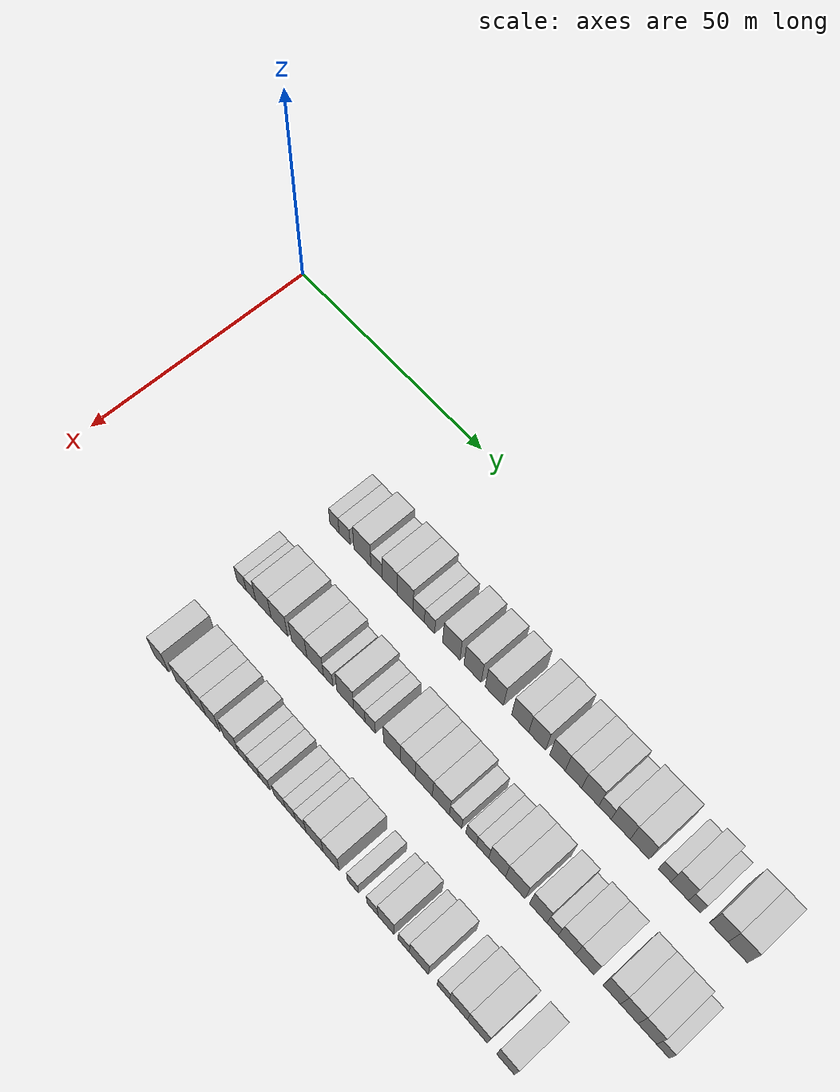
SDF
<sdf version="1.6">
 <world name="default">
  <model name="building_76">
   <static>1</static>
   <pose>25.0000 44.4701 0 0.000000 0.000000 0.000000</pose>
   <link name="link">
    <pose>0 0 3.00 0 0 0</pose>
    <collision name="collision"><geometry><box><size>10.0000 2.4826 6.0000</size></box></geometry></collision>
    <visual name="visual">
     <cast_shadows>0</cast_shadows>
     <geometry><box><size>10.0000 2.4826 6.0000</size></box></geometry>
     <material>
      <script>
       <uri>model://HANNAS_wall/materials/scripts</uri>
       <uri>model://HANNAS_wall/materials/textures</uri>
       <name>vrc/HANNAS_wall</name>
      </script>
     </material>
    </visual>
   </link>
  </model>
  <model name="building_77">
   <static>1</static>
   <pose>25.0000 47.1945 0 0.000000 0.000000 0.000000</pose>
   <link name="link">
    <pose>0 0 3.00 0 0 0</pose>
    <collision name="collision"><geometry><box><size>10.0000 2.9663 6.0000</size></box></geometry></collision>
    <visual name="visual">
     <cast_shadows>0</cast_shadows>
     <geometry><box><size>10.0000 2.9663 6.0000</size></box></geometry>
     <material>
      <script>
       <uri>model://HANNAS_wall/materials/scripts</uri>
       <uri>model://HANNAS_wall/materials/textures</uri>
       <name>vrc/HANNAS_wall</name>
      </script>
     </material>
    </visual>
   </link>
  </model>
  <model name="building_78">
   <static>1</static>
   <pose>25.0000 51.9256 0 0.000000 0.000000 0.000000</pose>
   <link name="link">
    <pose>0 0 4.50 0 0 0</pose>
    <collision name="collision"><geometry><box><size>10.0000 4.4959 9.0000</size></box></geometry></collision>
    <visual name="visual">
     <cast_shadows>0</cast_shadows>
     <geometry><box><size>10.0000 4.4959 9.0000</size></box></geometry>
     <material>
      <script>
       <uri>model://HANNAS_wall/materials/scripts</uri>
       <uri>model://HANNAS_wall/materials/textures</uri>
       <name>vrc/HANNAS_wall</name>
      </script>
     </material>
    </visual>
   </link>
  </model>
  <model name="building_79">
   <static>1</static>
   <pose>25.0000 55.6669 0 0.000000 0.000000 0.000000</pose>
   <link name="link">
    <pose>0 0 3.00 0 0 0</pose>
    <collision name="collision"><geometry><box><size>10.0000 2.9866 6.0000</size></box></geometry></collision>
    <visual name="visual">
     <cast_shadows>0</cast_shadows>
     <geometry><box><size>10.0000 2.9866 6.0000</size></box></geometry>
     <material>
      <script>
       <uri>model://HANNAS_wall/materials/scripts</uri>
       <uri>model://HANNAS_wall/materials/textures</uri>
       <name>vrc/HANNAS_wall</name>
      </script>
     </material>
    </visual>
   </link>
  </model>
  <model name="building_80">
   <static>1</static>
   <pose>25.0000 59.0712 0 0.000000 0.000000 0.000000</pose>
   <link name="link">
    <pose>0 0 4.50 0 0 0</pose>
    <collision name="collision"><geometry><box><size>10.0000 3.8220 9.0000</size></box></geometry></collision>
    <visual name="visual">
     <cast_shadows>0</cast_shadows>
     <geometry><box><size>10.0000 3.8220 9.0000</size></box></geometry>
     <material>
      <script>
       <uri>model://HANNAS_wall/materials/scripts</uri>
       <uri>model://HANNAS_wall/materials/textures</uri>
       <name>vrc/HANNAS_wall</name>
      </script>
     </material>
    </visual>
   </link>
  </model>
  <model name="building_81">
   <static>1</static>
   <pose>25.0000 63.0634 0 0.000000 0.000000 0.000000</pose>
   <link name="link">
    <pose>0 0 4.50 0 0 0</pose>
    <collision name="collision"><geometry><box><size>10.0000 4.1626 9.0000</size></box></geometry></collision>
    <visual name="visual">
     <cast_shadows>0</cast_shadows>
     <geometry><box><size>10.0000 4.1626 9.0000</size></box></geometry>
     <material>
      <script>
       <uri>model://HANNAS_wall/materials/scripts</uri>
       <uri>model://HANNAS_wall/materials/textures</uri>
       <name>vrc/HANNAS_wall</name>
      </script>
     </material>
    </visual>
   </link>
  </model>
  <model name="building_82">
   <static>1</static>
   <pose>25.0000 66.5878 0 0.000000 0.000000 0.000000</pose>
   <link name="link">
    <pose>0 0 3.00 0 0 0</pose>
    <collision name="collision"><geometry><box><size>10.0000 2.8862 6.0000</size></box></geometry></collision>
    <visual name="visual">
     <cast_shadows>0</cast_shadows>
     <geometry><box><size>10.0000 2.8862 6.0000</size></box></geometry>
     <material>
      <script>
       <uri>model://HANNAS_wall/materials/scripts</uri>
       <uri>model://HANNAS_wall/materials/textures</uri>
       <name>vrc/HANNAS_wall</name>
      </script>
     </material>
    </visual>
   </link>
  </model>
  <model name="building_83">
   <static>1</static>
   <pose>25.0000 69.3393 0 0.000000 0.000000 0.000000</pose>
   <link name="link">
    <pose>0 0 3.00 0 0 0</pose>
    <collision name="collision"><geometry><box><size>10.0000 2.6168 6.0000</size></box></geometry></collision>
    <visual name="visual">
     <cast_shadows>0</cast_shadows>
     <geometry><box><size>10.0000 2.6168 6.0000</size></box></geometry>
     <material>
      <script>
       <uri>model://HANNAS_wall/materials/scripts</uri>
       <uri>model://HANNAS_wall/materials/textures</uri>
       <name>vrc/HANNAS_wall</name>
      </script>
     </material>
    </visual>
   </link>
  </model>
  <model name="building_84">
   <static>1</static>
   <pose>25.0000 74.8178 0 0.000000 0.000000 0.000000</pose>
   <link name="link">
    <pose>0 0 4.50 0 0 0</pose>
    <collision name="collision"><geometry><box><size>10.0000 4.3402 9.0000</size></box></geometry></collision>
    <visual name="visual">
     <cast_shadows>0</cast_shadows>
     <geometry><box><size>10.0000 4.3402 9.0000</size></box></geometry>
     <material>
      <script>
       <uri>model://HANNAS_wall/materials/scripts</uri>
       <uri>model://HANNAS_wall/materials/textures</uri>
       <name>vrc/HANNAS_wall</name>
      </script>
     </material>
    </visual>
   </link>
  </model>
  <model name="building_85">
   <static>1</static>
   <pose>25.0000 80.1130 0 0.000000 0.000000 0.000000</pose>
   <link name="link">
    <pose>0 0 4.50 0 0 0</pose>
    <collision name="collision"><geometry><box><size>10.0000 4.2502 9.0000</size></box></geometry></collision>
    <visual name="visual">
     <cast_shadows>0</cast_shadows>
     <geometry><box><size>10.0000 4.2502 9.0000</size></box></geometry>
     <material>
      <script>
       <uri>model://HANNAS_wall/materials/scripts</uri>
       <uri>model://HANNAS_wall/materials/textures</uri>
       <name>vrc/HANNAS_wall</name>
      </script>
     </material>
    </visual>
   </link>
  </model>
  <model name="building_86">
   <static>1</static>
   <pose>25.0000 85.4410 0 0.000000 0.000000 0.000000</pose>
   <link name="link">
    <pose>0 0 4.50 0 0 0</pose>
    <collision name="collision"><geometry><box><size>10.0000 4.4057 9.0000</size></box></geometry></collision>
    <visual name="visual">
     <cast_shadows>0</cast_shadows>
     <geometry><box><size>10.0000 4.4057 9.0000</size></box></geometry>
     <material>
      <script>
       <uri>model://HANNAS_wall/materials/scripts</uri>
       <uri>model://HANNAS_wall/materials/textures</uri>
       <name>vrc/HANNAS_wall</name>
      </script>
     </material>
    </visual>
   </link>
  </model>
  <model name="building_87">
   <static>1</static>
   <pose>25.0000 91.6911 0 0.000000 0.000000 0.000000</pose>
   <link name="link">
    <pose>0 0 4.50 0 0 0</pose>
    <collision name="collision"><geometry><box><size>10.0000 4.0946 9.0000</size></box></geometry></collision>
    <visual name="visual">
     <cast_shadows>0</cast_shadows>
     <geometry><box><size>10.0000 4.0946 9.0000</size></box></geometry>
     <material>
      <script>
       <uri>model://HANNAS_wall/materials/scripts</uri>
       <uri>model://HANNAS_wall/materials/textures</uri>
       <name>vrc/HANNAS_wall</name>
      </script>
     </material>
    </visual>
   </link>
  </model>
  <model name="building_88">
   <static>1</static>
   <pose>25.0000 95.7293 0 0.000000 0.000000 0.000000</pose>
   <link name="link">
    <pose>0 0 4.50 0 0 0</pose>
    <collision name="collision"><geometry><box><size>10.0000 3.9817 9.0000</size></box></geometry></collision>
    <visual name="visual">
     <cast_shadows>0</cast_shadows>
     <geometry><box><size>10.0000 3.9817 9.0000</size></box></geometry>
     <material>
      <script>
       <uri>model://HANNAS_wall/materials/scripts</uri>
       <uri>model://HANNAS_wall/materials/textures</uri>
       <name>vrc/HANNAS_wall</name>
      </script>
     </material>
    </visual>
   </link>
  </model>
  <model name="building_89">
   <static>1</static>
   <pose>25.0000 100.5229 0 0.000000 0.000000 0.000000</pose>
   <link name="link">
    <pose>0 0 4.50 0 0 0</pose>
    <collision name="collision"><geometry><box><size>10.0000 3.6054 9.0000</size></box></geometry></collision>
    <visual name="visual">
     <cast_shadows>0</cast_shadows>
     <geometry><box><size>10.0000 3.6054 9.0000</size></box></geometry>
     <material>
      <script>
       <uri>model://HANNAS_wall/materials/scripts</uri>
       <uri>model://HANNAS_wall/materials/textures</uri>
       <name>vrc/HANNAS_wall</name>
      </script>
     </material>
    </visual>
   </link>
  </model>
  <model name="building_90">
   <static>1</static>
   <pose>25.0000 104.2422 0 0.000000 0.000000 0.000000</pose>
   <link name="link">
    <pose>0 0 4.50 0 0 0</pose>
    <collision name="collision"><geometry><box><size>10.0000 3.8333 9.0000</size></box></geometry></collision>
    <visual name="visual">
     <cast_shadows>0</cast_shadows>
     <geometry><box><size>10.0000 3.8333 9.0000</size></box></geometry>
     <material>
      <script>
       <uri>model://HANNAS_wall/materials/scripts</uri>
       <uri>model://HANNAS_wall/materials/textures</uri>
       <name>vrc/HANNAS_wall</name>
      </script>
     </material>
    </visual>
   </link>
  </model>
  <model name="building_91">
   <static>1</static>
   <pose>25.0000 108.1077 0 0.000000 0.000000 0.000000</pose>
   <link name="link">
    <pose>0 0 4.50 0 0 0</pose>
    <collision name="collision"><geometry><box><size>10.0000 3.8977 9.0000</size></box></geometry></collision>
    <visual name="visual">
     <cast_shadows>0</cast_shadows>
     <geometry><box><size>10.0000 3.8977 9.0000</size></box></geometry>
     <material>
      <script>
       <uri>model://HANNAS_wall/materials/scripts</uri>
       <uri>model://HANNAS_wall/materials/textures</uri>
       <name>vrc/HANNAS_wall</name>
      </script>
     </material>
    </visual>
   </link>
  </model>
  <model name="building_92">
   <static>1</static>
   <pose>25.0000 111.4803 0 0.000000 0.000000 0.000000</pose>
   <link name="link">
    <pose>0 0 3.00 0 0 0</pose>
    <collision name="collision"><geometry><box><size>10.0000 2.8475 6.0000</size></box></geometry></collision>
    <visual name="visual">
     <cast_shadows>0</cast_shadows>
     <geometry><box><size>10.0000 2.8475 6.0000</size></box></geometry>
     <material>
      <script>
       <uri>model://HANNAS_wall/materials/scripts</uri>
       <uri>model://HANNAS_wall/materials/textures</uri>
       <name>vrc/HANNAS_wall</name>
      </script>
     </material>
    </visual>
   </link>
  </model>
  <model name="building_93">
   <static>1</static>
   <pose>25.0000 115.0383 0 0.000000 0.000000 0.000000</pose>
   <link name="link">
    <pose>0 0 4.50 0 0 0</pose>
    <collision name="collision"><geometry><box><size>10.0000 4.2685 9.0000</size></box></geometry></collision>
    <visual name="visual">
     <cast_shadows>0</cast_shadows>
     <geometry><box><size>10.0000 4.2685 9.0000</size></box></geometry>
     <material>
      <script>
       <uri>model://HANNAS_wall/materials/scripts</uri>
       <uri>model://HANNAS_wall/materials/textures</uri>
       <name>vrc/HANNAS_wall</name>
      </script>
     </material>
    </visual>
   </link>
  </model>
  <model name="building_94">
   <static>1</static>
   <pose>25.0000 119.2861 0 0.000000 0.000000 0.000000</pose>
   <link name="link">
    <pose>0 0 4.50 0 0 0</pose>
    <collision name="collision"><geometry><box><size>10.0000 4.2270 9.0000</size></box></geometry></collision>
    <visual name="visual">
     <cast_shadows>0</cast_shadows>
     <geometry><box><size>10.0000 4.2270 9.0000</size></box></geometry>
     <material>
      <script>
       <uri>model://HANNAS_wall/materials/scripts</uri>
       <uri>model://HANNAS_wall/materials/textures</uri>
       <name>vrc/HANNAS_wall</name>
      </script>
     </material>
    </visual>
   </link>
  </model>
  <model name="building_95">
   <static>1</static>
   <pose>25.0000 124.7895 0 0.000000 0.000000 0.000000</pose>
   <link name="link">
    <pose>0 0 3.00 0 0 0</pose>
    <collision name="collision"><geometry><box><size>10.0000 2.7799 6.0000</size></box></geometry></collision>
    <visual name="visual">
     <cast_shadows>0</cast_shadows>
     <geometry><box><size>10.0000 2.7799 6.0000</size></box></geometry>
     <material>
      <script>
       <uri>model://HANNAS_wall/materials/scripts</uri>
       <uri>model://HANNAS_wall/materials/textures</uri>
       <name>vrc/HANNAS_wall</name>
      </script>
     </material>
    </visual>
   </link>
  </model>
  <model name="building_96">
   <static>1</static>
   <pose>25.0000 128.0759 0 0.000000 0.000000 0.000000</pose>
   <link name="link">
    <pose>0 0 4.50 0 0 0</pose>
    <collision name="collision"><geometry><box><size>10.0000 3.7927 9.0000</size></box></geometry></collision>
    <visual name="visual">
     <cast_shadows>0</cast_shadows>
     <geometry><box><size>10.0000 3.7927 9.0000</size></box></geometry>
     <material>
      <script>
       <uri>model://HANNAS_wall/materials/scripts</uri>
       <uri>model://HANNAS_wall/materials/textures</uri>
       <name>vrc/HANNAS_wall</name>
      </script>
     </material>
    </visual>
   </link>
  </model>
  <model name="building_97">
   <static>1</static>
   <pose>25.0000 131.2303 0 0.000000 0.000000 0.000000</pose>
   <link name="link">
    <pose>0 0 3.00 0 0 0</pose>
    <collision name="collision"><geometry><box><size>10.0000 2.5162 6.0000</size></box></geometry></collision>
    <visual name="visual">
     <cast_shadows>0</cast_shadows>
     <geometry><box><size>10.0000 2.5162 6.0000</size></box></geometry>
     <material>
      <script>
       <uri>model://HANNAS_wall/materials/scripts</uri>
       <uri>model://HANNAS_wall/materials/textures</uri>
       <name>vrc/HANNAS_wall</name>
      </script>
     </material>
    </visual>
   </link>
  </model>
  <model name="building_98">
   <static>1</static>
   <pose>25.0000 136.4321 0 0.000000 0.000000 0.000000</pose>
   <link name="link">
    <pose>0 0 4.50 0 0 0</pose>
    <collision name="collision"><geometry><box><size>10.0000 3.8874 9.0000</size></box></geometry></collision>
    <visual name="visual">
     <cast_shadows>0</cast_shadows>
     <geometry><box><size>10.0000 3.8874 9.0000</size></box></geometry>
     <material>
      <script>
       <uri>model://HANNAS_wall/materials/scripts</uri>
       <uri>model://HANNAS_wall/materials/textures</uri>
       <name>vrc/HANNAS_wall</name>
      </script>
     </material>
    </visual>
   </link>
  </model>
  <model name="building_99">
   <static>1</static>
   <pose>25.0000 140.4433 0 0.000000 0.000000 0.000000</pose>
   <link name="link">
    <pose>0 0 4.50 0 0 0</pose>
    <collision name="collision"><geometry><box><size>10.0000 4.1350 9.0000</size></box></geometry></collision>
    <visual name="visual">
     <cast_shadows>0</cast_shadows>
     <geometry><box><size>10.0000 4.1350 9.0000</size></box></geometry>
     <material>
      <script>
       <uri>model://HANNAS_wall/materials/scripts</uri>
       <uri>model://HANNAS_wall/materials/textures</uri>
       <name>vrc/HANNAS_wall</name>
      </script>
     </material>
    </visual>
   </link>
  </model>
  <model name="building_190">
   <static>1</static>
   <pose>44.0000 42.2228 0 0.000000 0.000000 0.000000</pose>
   <link name="link">
    <pose>0 0 3.00 0 0 0</pose>
    <collision name="collision"><geometry><box><size>10.0000 2.4965 6.0000</size></box></geometry></collision>
    <visual name="visual">
     <cast_shadows>0</cast_shadows>
     <geometry><box><size>10.0000 2.4965 6.0000</size></box></geometry>
     <material>
      <script>
       <uri>model://HANNAS_wall/materials/scripts</uri>
       <uri>model://HANNAS_wall/materials/textures</uri>
       <name>vrc/HANNAS_wall</name>
      </script>
     </material>
    </visual>
   </link>
  </model>
  <model name="building_191">
   <static>1</static>
   <pose>44.0000 44.7994 0 0.000000 0.000000 0.000000</pose>
   <link name="link">
    <pose>0 0 3.00 0 0 0</pose>
    <collision name="collision"><geometry><box><size>10.0000 2.6568 6.0000</size></box></geometry></collision>
    <visual name="visual">
     <cast_shadows>0</cast_shadows>
     <geometry><box><size>10.0000 2.6568 6.0000</size></box></geometry>
     <material>
      <script>
       <uri>model://HANNAS_wall/materials/scripts</uri>
       <uri>model://HANNAS_wall/materials/textures</uri>
       <name>vrc/HANNAS_wall</name>
      </script>
     </material>
    </visual>
   </link>
  </model>
  <model name="building_192">
   <static>1</static>
   <pose>44.0000 48.2022 0 0.000000 0.000000 0.000000</pose>
   <link name="link">
    <pose>0 0 4.50 0 0 0</pose>
    <collision name="collision"><geometry><box><size>10.0000 4.1487 9.0000</size></box></geometry></collision>
    <visual name="visual">
     <cast_shadows>0</cast_shadows>
     <geometry><box><size>10.0000 4.1487 9.0000</size></box></geometry>
     <material>
      <script>
       <uri>model://HANNAS_wall/materials/scripts</uri>
       <uri>model://HANNAS_wall/materials/textures</uri>
       <name>vrc/HANNAS_wall</name>
      </script>
     </material>
    </visual>
   </link>
  </model>
  <model name="building_193">
   <static>1</static>
   <pose>44.0000 52.4745 0 0.000000 0.000000 0.000000</pose>
   <link name="link">
    <pose>0 0 4.50 0 0 0</pose>
    <collision name="collision"><geometry><box><size>10.0000 4.3957 9.0000</size></box></geometry></collision>
    <visual name="visual">
     <cast_shadows>0</cast_shadows>
     <geometry><box><size>10.0000 4.3957 9.0000</size></box></geometry>
     <material>
      <script>
       <uri>model://HANNAS_wall/materials/scripts</uri>
       <uri>model://HANNAS_wall/materials/textures</uri>
       <name>vrc/HANNAS_wall</name>
      </script>
     </material>
    </visual>
   </link>
  </model>
  <model name="building_194">
   <static>1</static>
   <pose>44.0000 57.6995 0 0.000000 0.000000 0.000000</pose>
   <link name="link">
    <pose>0 0 4.50 0 0 0</pose>
    <collision name="collision"><geometry><box><size>10.0000 4.0543 9.0000</size></box></geometry></collision>
    <visual name="visual">
     <cast_shadows>0</cast_shadows>
     <geometry><box><size>10.0000 4.0543 9.0000</size></box></geometry>
     <material>
      <script>
       <uri>model://HANNAS_wall/materials/scripts</uri>
       <uri>model://HANNAS_wall/materials/textures</uri>
       <name>vrc/HANNAS_wall</name>
      </script>
     </material>
    </visual>
   </link>
  </model>
  <model name="building_195">
   <static>1</static>
   <pose>44.0000 61.8690 0 0.000000 0.000000 0.000000</pose>
   <link name="link">
    <pose>0 0 4.50 0 0 0</pose>
    <collision name="collision"><geometry><box><size>10.0000 4.2849 9.0000</size></box></geometry></collision>
    <visual name="visual">
     <cast_shadows>0</cast_shadows>
     <geometry><box><size>10.0000 4.2849 9.0000</size></box></geometry>
     <material>
      <script>
       <uri>model://HANNAS_wall/materials/scripts</uri>
       <uri>model://HANNAS_wall/materials/textures</uri>
       <name>vrc/HANNAS_wall</name>
      </script>
     </material>
    </visual>
   </link>
  </model>
  <model name="building_196">
   <static>1</static>
   <pose>44.0000 65.2425 0 0.000000 0.000000 0.000000</pose>
   <link name="link">
    <pose>0 0 3.00 0 0 0</pose>
    <collision name="collision"><geometry><box><size>10.0000 2.4620 6.0000</size></box></geometry></collision>
    <visual name="visual">
     <cast_shadows>0</cast_shadows>
     <geometry><box><size>10.0000 2.4620 6.0000</size></box></geometry>
     <material>
      <script>
       <uri>model://HANNAS_wall/materials/scripts</uri>
       <uri>model://HANNAS_wall/materials/textures</uri>
       <name>vrc/HANNAS_wall</name>
      </script>
     </material>
    </visual>
   </link>
  </model>
  <model name="building_197">
   <static>1</static>
   <pose>44.0000 69.6063 0 0.000000 0.000000 0.000000</pose>
   <link name="link">
    <pose>0 0 4.50 0 0 0</pose>
    <collision name="collision"><geometry><box><size>10.0000 4.2656 9.0000</size></box></geometry></collision>
    <visual name="visual">
     <cast_shadows>0</cast_shadows>
     <geometry><box><size>10.0000 4.2656 9.0000</size></box></geometry>
     <material>
      <script>
       <uri>model://HANNAS_wall/materials/scripts</uri>
       <uri>model://HANNAS_wall/materials/textures</uri>
       <name>vrc/HANNAS_wall</name>
      </script>
     </material>
    </visual>
   </link>
  </model>
  <model name="building_198">
   <static>1</static>
   <pose>44.0000 73.1795 0 0.000000 0.000000 0.000000</pose>
   <link name="link">
    <pose>0 0 3.00 0 0 0</pose>
    <collision name="collision"><geometry><box><size>10.0000 2.8809 6.0000</size></box></geometry></collision>
    <visual name="visual">
     <cast_shadows>0</cast_shadows>
     <geometry><box><size>10.0000 2.8809 6.0000</size></box></geometry>
     <material>
      <script>
       <uri>model://HANNAS_wall/materials/scripts</uri>
       <uri>model://HANNAS_wall/materials/textures</uri>
       <name>vrc/HANNAS_wall</name>
      </script>
     </material>
    </visual>
   </link>
  </model>
  <model name="building_199">
   <static>1</static>
   <pose>44.0000 75.9093 0 0.000000 0.000000 0.000000</pose>
   <link name="link">
    <pose>0 0 3.00 0 0 0</pose>
    <collision name="collision"><geometry><box><size>10.0000 2.5786 6.0000</size></box></geometry></collision>
    <visual name="visual">
     <cast_shadows>0</cast_shadows>
     <geometry><box><size>10.0000 2.5786 6.0000</size></box></geometry>
     <material>
      <script>
       <uri>model://HANNAS_wall/materials/scripts</uri>
       <uri>model://HANNAS_wall/materials/textures</uri>
       <name>vrc/HANNAS_wall</name>
      </script>
     </material>
    </visual>
   </link>
  </model>
  <model name="building_200">
   <static>1</static>
   <pose>44.0000 81.2546 0 0.000000 0.000000 0.000000</pose>
   <link name="link">
    <pose>0 0 4.50 0 0 0</pose>
    <collision name="collision"><geometry><box><size>10.0000 4.1120 9.0000</size></box></geometry></collision>
    <visual name="visual">
     <cast_shadows>0</cast_shadows>
     <geometry><box><size>10.0000 4.1120 9.0000</size></box></geometry>
     <material>
      <script>
       <uri>model://HANNAS_wall/materials/scripts</uri>
       <uri>model://HANNAS_wall/materials/textures</uri>
       <name>vrc/HANNAS_wall</name>
      </script>
     </material>
    </visual>
   </link>
  </model>
  <model name="building_201">
   <static>1</static>
   <pose>44.0000 85.1392 0 0.000000 0.000000 0.000000</pose>
   <link name="link">
    <pose>0 0 4.50 0 0 0</pose>
    <collision name="collision"><geometry><box><size>10.0000 3.6573 9.0000</size></box></geometry></collision>
    <visual name="visual">
     <cast_shadows>0</cast_shadows>
     <geometry><box><size>10.0000 3.6573 9.0000</size></box></geometry>
     <material>
      <script>
       <uri>model://HANNAS_wall/materials/scripts</uri>
       <uri>model://HANNAS_wall/materials/textures</uri>
       <name>vrc/HANNAS_wall</name>
      </script>
     </material>
    </visual>
   </link>
  </model>
  <model name="building_202">
   <static>1</static>
   <pose>44.0000 89.0644 0 0.000000 0.000000 0.000000</pose>
   <link name="link">
    <pose>0 0 4.50 0 0 0</pose>
    <collision name="collision"><geometry><box><size>10.0000 4.1931 9.0000</size></box></geometry></collision>
    <visual name="visual">
     <cast_shadows>0</cast_shadows>
     <geometry><box><size>10.0000 4.1931 9.0000</size></box></geometry>
     <material>
      <script>
       <uri>model://HANNAS_wall/materials/scripts</uri>
       <uri>model://HANNAS_wall/materials/textures</uri>
       <name>vrc/HANNAS_wall</name>
      </script>
     </material>
    </visual>
   </link>
  </model>
  <model name="building_203">
   <static>1</static>
   <pose>44.0000 93.1989 0 0.000000 0.000000 0.000000</pose>
   <link name="link">
    <pose>0 0 4.50 0 0 0</pose>
    <collision name="collision"><geometry><box><size>10.0000 4.0758 9.0000</size></box></geometry></collision>
    <visual name="visual">
     <cast_shadows>0</cast_shadows>
     <geometry><box><size>10.0000 4.0758 9.0000</size></box></geometry>
     <material>
      <script>
       <uri>model://HANNAS_wall/materials/scripts</uri>
       <uri>model://HANNAS_wall/materials/textures</uri>
       <name>vrc/HANNAS_wall</name>
      </script>
     </material>
    </visual>
   </link>
  </model>
  <model name="building_204">
   <static>1</static>
   <pose>44.0000 96.6870 0 0.000000 0.000000 0.000000</pose>
   <link name="link">
    <pose>0 0 3.00 0 0 0</pose>
    <collision name="collision"><geometry><box><size>10.0000 2.9004 6.0000</size></box></geometry></collision>
    <visual name="visual">
     <cast_shadows>0</cast_shadows>
     <geometry><box><size>10.0000 2.9004 6.0000</size></box></geometry>
     <material>
      <script>
       <uri>model://HANNAS_wall/materials/scripts</uri>
       <uri>model://HANNAS_wall/materials/textures</uri>
       <name>vrc/HANNAS_wall</name>
      </script>
     </material>
    </visual>
   </link>
  </model>
  <model name="building_205">
   <static>1</static>
   <pose>44.0000 100.3880 0 0.000000 0.000000 0.000000</pose>
   <link name="link">
    <pose>0 0 3.00 0 0 0</pose>
    <collision name="collision"><geometry><box><size>10.0000 2.5015 6.0000</size></box></geometry></collision>
    <visual name="visual">
     <cast_shadows>0</cast_shadows>
     <geometry><box><size>10.0000 2.5015 6.0000</size></box></geometry>
     <material>
      <script>
       <uri>model://HANNAS_wall/materials/scripts</uri>
       <uri>model://HANNAS_wall/materials/textures</uri>
       <name>vrc/HANNAS_wall</name>
      </script>
     </material>
    </visual>
   </link>
  </model>
  <model name="building_206">
   <static>1</static>
   <pose>44.0000 103.0746 0 0.000000 0.000000 0.000000</pose>
   <link name="link">
    <pose>0 0 3.00 0 0 0</pose>
    <collision name="collision"><geometry><box><size>10.0000 2.8717 6.0000</size></box></geometry></collision>
    <visual name="visual">
     <cast_shadows>0</cast_shadows>
     <geometry><box><size>10.0000 2.8717 6.0000</size></box></geometry>
     <material>
      <script>
       <uri>model://HANNAS_wall/materials/scripts</uri>
       <uri>model://HANNAS_wall/materials/textures</uri>
       <name>vrc/HANNAS_wall</name>
      </script>
     </material>
    </visual>
   </link>
  </model>
  <model name="building_207">
   <static>1</static>
   <pose>44.0000 106.4565 0 0.000000 0.000000 0.000000</pose>
   <link name="link">
    <pose>0 0 4.50 0 0 0</pose>
    <collision name="collision"><geometry><box><size>10.0000 3.8921 9.0000</size></box></geometry></collision>
    <visual name="visual">
     <cast_shadows>0</cast_shadows>
     <geometry><box><size>10.0000 3.8921 9.0000</size></box></geometry>
     <material>
      <script>
       <uri>model://HANNAS_wall/materials/scripts</uri>
       <uri>model://HANNAS_wall/materials/textures</uri>
       <name>vrc/HANNAS_wall</name>
      </script>
     </material>
    </visual>
   </link>
  </model>
  <model name="building_208">
   <static>1</static>
   <pose>44.0000 110.6378 0 0.000000 0.000000 0.000000</pose>
   <link name="link">
    <pose>0 0 4.50 0 0 0</pose>
    <collision name="collision"><geometry><box><size>10.0000 4.4704 9.0000</size></box></geometry></collision>
    <visual name="visual">
     <cast_shadows>0</cast_shadows>
     <geometry><box><size>10.0000 4.4704 9.0000</size></box></geometry>
     <material>
      <script>
       <uri>model://HANNAS_wall/materials/scripts</uri>
       <uri>model://HANNAS_wall/materials/textures</uri>
       <name>vrc/HANNAS_wall</name>
      </script>
     </material>
    </visual>
   </link>
  </model>
  <model name="building_209">
   <static>1</static>
   <pose>44.0000 115.8561 0 0.000000 0.000000 0.000000</pose>
   <link name="link">
    <pose>0 0 4.50 0 0 0</pose>
    <collision name="collision"><geometry><box><size>10.0000 3.9663 9.0000</size></box></geometry></collision>
    <visual name="visual">
     <cast_shadows>0</cast_shadows>
     <geometry><box><size>10.0000 3.9663 9.0000</size></box></geometry>
     <material>
      <script>
       <uri>model://HANNAS_wall/materials/scripts</uri>
       <uri>model://HANNAS_wall/materials/textures</uri>
       <name>vrc/HANNAS_wall</name>
      </script>
     </material>
    </visual>
   </link>
  </model>
  <model name="building_210">
   <static>1</static>
   <pose>44.0000 119.0808 0 0.000000 0.000000 0.000000</pose>
   <link name="link">
    <pose>0 0 3.00 0 0 0</pose>
    <collision name="collision"><geometry><box><size>10.0000 2.4829 6.0000</size></box></geometry></collision>
    <visual name="visual">
     <cast_shadows>0</cast_shadows>
     <geometry><box><size>10.0000 2.4829 6.0000</size></box></geometry>
     <material>
      <script>
       <uri>model://HANNAS_wall/materials/scripts</uri>
       <uri>model://HANNAS_wall/materials/textures</uri>
       <name>vrc/HANNAS_wall</name>
      </script>
     </material>
    </visual>
   </link>
  </model>
  <model name="building_211">
   <static>1</static>
   <pose>44.0000 122.2401 0 0.000000 0.000000 0.000000</pose>
   <link name="link">
    <pose>0 0 4.50 0 0 0</pose>
    <collision name="collision"><geometry><box><size>10.0000 3.8358 9.0000</size></box></geometry></collision>
    <visual name="visual">
     <cast_shadows>0</cast_shadows>
     <geometry><box><size>10.0000 3.8358 9.0000</size></box></geometry>
     <material>
      <script>
       <uri>model://HANNAS_wall/materials/scripts</uri>
       <uri>model://HANNAS_wall/materials/textures</uri>
       <name>vrc/HANNAS_wall</name>
      </script>
     </material>
    </visual>
   </link>
  </model>
  <model name="building_212">
   <static>1</static>
   <pose>44.0000 126.1615 0 0.000000 0.000000 0.000000</pose>
   <link name="link">
    <pose>0 0 4.50 0 0 0</pose>
    <collision name="collision"><geometry><box><size>10.0000 4.0070 9.0000</size></box></geometry></collision>
    <visual name="visual">
     <cast_shadows>0</cast_shadows>
     <geometry><box><size>10.0000 4.0070 9.0000</size></box></geometry>
     <material>
      <script>
       <uri>model://HANNAS_wall/materials/scripts</uri>
       <uri>model://HANNAS_wall/materials/textures</uri>
       <name>vrc/HANNAS_wall</name>
      </script>
     </material>
    </visual>
   </link>
  </model>
  <model name="building_213">
   <static>1</static>
   <pose>44.0000 132.0332 0 0.000000 0.000000 0.000000</pose>
   <link name="link">
    <pose>0 0 4.50 0 0 0</pose>
    <collision name="collision"><geometry><box><size>10.0000 3.7365 9.0000</size></box></geometry></collision>
    <visual name="visual">
     <cast_shadows>0</cast_shadows>
     <geometry><box><size>10.0000 3.7365 9.0000</size></box></geometry>
     <material>
      <script>
       <uri>model://HANNAS_wall/materials/scripts</uri>
       <uri>model://HANNAS_wall/materials/textures</uri>
       <name>vrc/HANNAS_wall</name>
      </script>
     </material>
    </visual>
   </link>
  </model>
  <model name="building_214">
   <static>1</static>
   <pose>44.0000 135.7695 0 0.000000 0.000000 0.000000</pose>
   <link name="link">
    <pose>0 0 4.50 0 0 0</pose>
    <collision name="collision"><geometry><box><size>10.0000 3.7361 9.0000</size></box></geometry></collision>
    <visual name="visual">
     <cast_shadows>0</cast_shadows>
     <geometry><box><size>10.0000 3.7361 9.0000</size></box></geometry>
     <material>
      <script>
       <uri>model://HANNAS_wall/materials/scripts</uri>
       <uri>model://HANNAS_wall/materials/textures</uri>
       <name>vrc/HANNAS_wall</name>
      </script>
     </material>
    </visual>
   </link>
  </model>
  <model name="building_215">
   <static>1</static>
   <pose>44.0000 139.5930 0 0.000000 0.000000 0.000000</pose>
   <link name="link">
    <pose>0 0 4.50 0 0 0</pose>
    <collision name="collision"><geometry><box><size>10.0000 3.9109 9.0000</size></box></geometry></collision>
    <visual name="visual">
     <cast_shadows>0</cast_shadows>
     <geometry><box><size>10.0000 3.9109 9.0000</size></box></geometry>
     <material>
      <script>
       <uri>model://HANNAS_wall/materials/scripts</uri>
       <uri>model://HANNAS_wall/materials/textures</uri>
       <name>vrc/HANNAS_wall</name>
      </script>
     </material>
    </visual>
   </link>
  </model>
  <model name="building_216">
   <static>1</static>
   <pose>44.0000 142.8691 0 0.000000 0.000000 0.000000</pose>
   <link name="link">
    <pose>0 0 3.00 0 0 0</pose>
    <collision name="collision"><geometry><box><size>10.0000 2.6415 6.0000</size></box></geometry></collision>
    <visual name="visual">
     <cast_shadows>0</cast_shadows>
     <geometry><box><size>10.0000 2.6415 6.0000</size></box></geometry>
     <material>
      <script>
       <uri>model://HANNAS_wall/materials/scripts</uri>
       <uri>model://HANNAS_wall/materials/textures</uri>
       <name>vrc/HANNAS_wall</name>
      </script>
     </material>
    </visual>
   </link>
  </model>
  <model name="building_316">
   <static>1</static>
   <pose>63.0000 44.4736 0 0.000000 0.000000 0.000000</pose>
   <link name="link">
    <pose>0 0 4.50 0 0 0</pose>
    <collision name="collision"><geometry><box><size>10.0000 3.8738 9.0000</size></box></geometry></collision>
    <visual name="visual">
     <cast_shadows>0</cast_shadows>
     <geometry><box><size>10.0000 3.8738 9.0000</size></box></geometry>
     <material>
      <script>
       <uri>model://HANNAS_wall/materials/scripts</uri>
       <uri>model://HANNAS_wall/materials/textures</uri>
       <name>vrc/HANNAS_wall</name>
      </script>
     </material>
    </visual>
   </link>
  </model>
  <model name="building_317">
   <static>1</static>
   <pose>63.0000 50.6130 0 0.000000 0.000000 0.000000</pose>
   <link name="link">
    <pose>0 0 4.50 0 0 0</pose>
    <collision name="collision"><geometry><box><size>10.0000 4.4051 9.0000</size></box></geometry></collision>
    <visual name="visual">
     <cast_shadows>0</cast_shadows>
     <geometry><box><size>10.0000 4.4051 9.0000</size></box></geometry>
     <material>
      <script>
       <uri>model://HANNAS_wall/materials/scripts</uri>
       <uri>model://HANNAS_wall/materials/textures</uri>
       <name>vrc/HANNAS_wall</name>
      </script>
     </material>
    </visual>
   </link>
  </model>
  <model name="building_318">
   <static>1</static>
   <pose>63.0000 54.6252 0 0.000000 0.000000 0.000000</pose>
   <link name="link">
    <pose>0 0 4.50 0 0 0</pose>
    <collision name="collision"><geometry><box><size>10.0000 3.6192 9.0000</size></box></geometry></collision>
    <visual name="visual">
     <cast_shadows>0</cast_shadows>
     <geometry><box><size>10.0000 3.6192 9.0000</size></box></geometry>
     <material>
      <script>
       <uri>model://HANNAS_wall/materials/scripts</uri>
       <uri>model://HANNAS_wall/materials/textures</uri>
       <name>vrc/HANNAS_wall</name>
      </script>
     </material>
    </visual>
   </link>
  </model>
  <model name="building_319">
   <static>1</static>
   <pose>63.0000 58.2808 0 0.000000 0.000000 0.000000</pose>
   <link name="link">
    <pose>0 0 4.50 0 0 0</pose>
    <collision name="collision"><geometry><box><size>10.0000 3.6920 9.0000</size></box></geometry></collision>
    <visual name="visual">
     <cast_shadows>0</cast_shadows>
     <geometry><box><size>10.0000 3.6920 9.0000</size></box></geometry>
     <material>
      <script>
       <uri>model://HANNAS_wall/materials/scripts</uri>
       <uri>model://HANNAS_wall/materials/textures</uri>
       <name>vrc/HANNAS_wall</name>
      </script>
     </material>
    </visual>
   </link>
  </model>
  <model name="building_320">
   <static>1</static>
   <pose>63.0000 63.1435 0 0.000000 0.000000 0.000000</pose>
   <link name="link">
    <pose>0 0 4.50 0 0 0</pose>
    <collision name="collision"><geometry><box><size>10.0000 4.0333 9.0000</size></box></geometry></collision>
    <visual name="visual">
     <cast_shadows>0</cast_shadows>
     <geometry><box><size>10.0000 4.0333 9.0000</size></box></geometry>
     <material>
      <script>
       <uri>model://HANNAS_wall/materials/scripts</uri>
       <uri>model://HANNAS_wall/materials/textures</uri>
       <name>vrc/HANNAS_wall</name>
      </script>
     </material>
    </visual>
   </link>
  </model>
  <model name="building_321">
   <static>1</static>
   <pose>63.0000 66.4079 0 0.000000 0.000000 0.000000</pose>
   <link name="link">
    <pose>0 0 3.00 0 0 0</pose>
    <collision name="collision"><geometry><box><size>10.0000 2.4955 6.0000</size></box></geometry></collision>
    <visual name="visual">
     <cast_shadows>0</cast_shadows>
     <geometry><box><size>10.0000 2.4955 6.0000</size></box></geometry>
     <material>
      <script>
       <uri>model://HANNAS_wall/materials/scripts</uri>
       <uri>model://HANNAS_wall/materials/textures</uri>
       <name>vrc/HANNAS_wall</name>
      </script>
     </material>
    </visual>
   </link>
  </model>
  <model name="building_322">
   <static>1</static>
   <pose>63.0000 69.1115 0 0.000000 0.000000 0.000000</pose>
   <link name="link">
    <pose>0 0 3.00 0 0 0</pose>
    <collision name="collision"><geometry><box><size>10.0000 2.9117 6.0000</size></box></geometry></collision>
    <visual name="visual">
     <cast_shadows>0</cast_shadows>
     <geometry><box><size>10.0000 2.9117 6.0000</size></box></geometry>
     <material>
      <script>
       <uri>model://HANNAS_wall/materials/scripts</uri>
       <uri>model://HANNAS_wall/materials/textures</uri>
       <name>vrc/HANNAS_wall</name>
      </script>
     </material>
    </visual>
   </link>
  </model>
  <model name="building_323">
   <static>1</static>
   <pose>63.0000 71.8615 0 0.000000 0.000000 0.000000</pose>
   <link name="link">
    <pose>0 0 3.00 0 0 0</pose>
    <collision name="collision"><geometry><box><size>10.0000 2.5883 6.0000</size></box></geometry></collision>
    <visual name="visual">
     <cast_shadows>0</cast_shadows>
     <geometry><box><size>10.0000 2.5883 6.0000</size></box></geometry>
     <material>
      <script>
       <uri>model://HANNAS_wall/materials/scripts</uri>
       <uri>model://HANNAS_wall/materials/textures</uri>
       <name>vrc/HANNAS_wall</name>
      </script>
     </material>
    </visual>
   </link>
  </model>
  <model name="building_324">
   <static>1</static>
   <pose>63.0000 75.5903 0 0.000000 0.000000 0.000000</pose>
   <link name="link">
    <pose>0 0 3.00 0 0 0</pose>
    <collision name="collision"><geometry><box><size>10.0000 2.8693 6.0000</size></box></geometry></collision>
    <visual name="visual">
     <cast_shadows>0</cast_shadows>
     <geometry><box><size>10.0000 2.8693 6.0000</size></box></geometry>
     <material>
      <script>
       <uri>model://HANNAS_wall/materials/scripts</uri>
       <uri>model://HANNAS_wall/materials/textures</uri>
       <name>vrc/HANNAS_wall</name>
      </script>
     </material>
    </visual>
   </link>
  </model>
  <model name="building_325">
   <static>1</static>
   <pose>63.0000 78.2925 0 0.000000 0.000000 0.000000</pose>
   <link name="link">
    <pose>0 0 3.00 0 0 0</pose>
    <collision name="collision"><geometry><box><size>10.0000 2.5352 6.0000</size></box></geometry></collision>
    <visual name="visual">
     <cast_shadows>0</cast_shadows>
     <geometry><box><size>10.0000 2.5352 6.0000</size></box></geometry>
     <material>
      <script>
       <uri>model://HANNAS_wall/materials/scripts</uri>
       <uri>model://HANNAS_wall/materials/textures</uri>
       <name>vrc/HANNAS_wall</name>
      </script>
     </material>
    </visual>
   </link>
  </model>
  <model name="building_326">
   <static>1</static>
   <pose>63.0000 80.8858 0 0.000000 0.000000 0.000000</pose>
   <link name="link">
    <pose>0 0 3.00 0 0 0</pose>
    <collision name="collision"><geometry><box><size>10.0000 2.6515 6.0000</size></box></geometry></collision>
    <visual name="visual">
     <cast_shadows>0</cast_shadows>
     <geometry><box><size>10.0000 2.6515 6.0000</size></box></geometry>
     <material>
      <script>
       <uri>model://HANNAS_wall/materials/scripts</uri>
       <uri>model://HANNAS_wall/materials/textures</uri>
       <name>vrc/HANNAS_wall</name>
      </script>
     </material>
    </visual>
   </link>
  </model>
  <model name="building_327">
   <static>1</static>
   <pose>63.0000 84.3346 0 0.000000 0.000000 0.000000</pose>
   <link name="link">
    <pose>0 0 4.50 0 0 0</pose>
    <collision name="collision"><geometry><box><size>10.0000 4.2461 9.0000</size></box></geometry></collision>
    <visual name="visual">
     <cast_shadows>0</cast_shadows>
     <geometry><box><size>10.0000 4.2461 9.0000</size></box></geometry>
     <material>
      <script>
       <uri>model://HANNAS_wall/materials/scripts</uri>
       <uri>model://HANNAS_wall/materials/textures</uri>
       <name>vrc/HANNAS_wall</name>
      </script>
     </material>
    </visual>
   </link>
  </model>
  <model name="building_328">
   <static>1</static>
   <pose>63.0000 88.4021 0 0.000000 0.000000 0.000000</pose>
   <link name="link">
    <pose>0 0 4.50 0 0 0</pose>
    <collision name="collision"><geometry><box><size>10.0000 3.8888 9.0000</size></box></geometry></collision>
    <visual name="visual">
     <cast_shadows>0</cast_shadows>
     <geometry><box><size>10.0000 3.8888 9.0000</size></box></geometry>
     <material>
      <script>
       <uri>model://HANNAS_wall/materials/scripts</uri>
       <uri>model://HANNAS_wall/materials/textures</uri>
       <name>vrc/HANNAS_wall</name>
      </script>
     </material>
    </visual>
   </link>
  </model>
  <model name="building_329">
   <static>1</static>
   <pose>63.0000 93.6779 0 0.000000 0.000000 0.000000</pose>
   <link name="link">
    <pose>0 0 3.00 0 0 0</pose>
    <collision name="collision"><geometry><box><size>10.0000 2.6627 6.0000</size></box></geometry></collision>
    <visual name="visual">
     <cast_shadows>0</cast_shadows>
     <geometry><box><size>10.0000 2.6627 6.0000</size></box></geometry>
     <material>
      <script>
       <uri>model://HANNAS_wall/materials/scripts</uri>
       <uri>model://HANNAS_wall/materials/textures</uri>
       <name>vrc/HANNAS_wall</name>
      </script>
     </material>
    </visual>
   </link>
  </model>
  <model name="building_330">
   <static>1</static>
   <pose>63.0000 98.3093 0 0.000000 0.000000 0.000000</pose>
   <link name="link">
    <pose>0 0 3.00 0 0 0</pose>
    <collision name="collision"><geometry><box><size>10.0000 2.6002 6.0000</size></box></geometry></collision>
    <visual name="visual">
     <cast_shadows>0</cast_shadows>
     <geometry><box><size>10.0000 2.6002 6.0000</size></box></geometry>
     <material>
      <script>
       <uri>model://HANNAS_wall/materials/scripts</uri>
       <uri>model://HANNAS_wall/materials/textures</uri>
       <name>vrc/HANNAS_wall</name>
      </script>
     </material>
    </visual>
   </link>
  </model>
  <model name="building_331">
   <static>1</static>
   <pose>63.0000 101.5141 0 0.000000 0.000000 0.000000</pose>
   <link name="link">
    <pose>0 0 4.50 0 0 0</pose>
    <collision name="collision"><geometry><box><size>10.0000 3.8093 9.0000</size></box></geometry></collision>
    <visual name="visual">
     <cast_shadows>0</cast_shadows>
     <geometry><box><size>10.0000 3.8093 9.0000</size></box></geometry>
     <material>
      <script>
       <uri>model://HANNAS_wall/materials/scripts</uri>
       <uri>model://HANNAS_wall/materials/textures</uri>
       <name>vrc/HANNAS_wall</name>
      </script>
     </material>
    </visual>
   </link>
  </model>
  <model name="building_332">
   <static>1</static>
   <pose>63.0000 105.7065 0 0.000000 0.000000 0.000000</pose>
   <link name="link">
    <pose>0 0 3.00 0 0 0</pose>
    <collision name="collision"><geometry><box><size>10.0000 2.5754 6.0000</size></box></geometry></collision>
    <visual name="visual">
     <cast_shadows>0</cast_shadows>
     <geometry><box><size>10.0000 2.5754 6.0000</size></box></geometry>
     <material>
      <script>
       <uri>model://HANNAS_wall/materials/scripts</uri>
       <uri>model://HANNAS_wall/materials/textures</uri>
       <name>vrc/HANNAS_wall</name>
      </script>
     </material>
    </visual>
   </link>
  </model>
  <model name="building_333">
   <static>1</static>
   <pose>63.0000 109.1811 0 0.000000 0.000000 0.000000</pose>
   <link name="link">
    <pose>0 0 4.50 0 0 0</pose>
    <collision name="collision"><geometry><box><size>10.0000 4.3737 9.0000</size></box></geometry></collision>
    <visual name="visual">
     <cast_shadows>0</cast_shadows>
     <geometry><box><size>10.0000 4.3737 9.0000</size></box></geometry>
     <material>
      <script>
       <uri>model://HANNAS_wall/materials/scripts</uri>
       <uri>model://HANNAS_wall/materials/textures</uri>
       <name>vrc/HANNAS_wall</name>
      </script>
     </material>
    </visual>
   </link>
  </model>
  <model name="building_334">
   <static>1</static>
   <pose>63.0000 114.7696 0 0.000000 0.000000 0.000000</pose>
   <link name="link">
    <pose>0 0 3.00 0 0 0</pose>
    <collision name="collision"><geometry><box><size>10.0000 2.8033 6.0000</size></box></geometry></collision>
    <visual name="visual">
     <cast_shadows>0</cast_shadows>
     <geometry><box><size>10.0000 2.8033 6.0000</size></box></geometry>
     <material>
      <script>
       <uri>model://HANNAS_wall/materials/scripts</uri>
       <uri>model://HANNAS_wall/materials/textures</uri>
       <name>vrc/HANNAS_wall</name>
      </script>
     </material>
    </visual>
   </link>
  </model>
  <model name="building_335">
   <static>1</static>
   <pose>63.0000 118.1861 0 0.000000 0.000000 0.000000</pose>
   <link name="link">
    <pose>0 0 4.50 0 0 0</pose>
    <collision name="collision"><geometry><box><size>10.0000 4.0296 9.0000</size></box></geometry></collision>
    <visual name="visual">
     <cast_shadows>0</cast_shadows>
     <geometry><box><size>10.0000 4.0296 9.0000</size></box></geometry>
     <material>
      <script>
       <uri>model://HANNAS_wall/materials/scripts</uri>
       <uri>model://HANNAS_wall/materials/textures</uri>
       <name>vrc/HANNAS_wall</name>
      </script>
     </material>
    </visual>
   </link>
  </model>
  <model name="building_336">
   <static>1</static>
   <pose>63.0000 122.4280 0 0.000000 0.000000 0.000000</pose>
   <link name="link">
    <pose>0 0 4.50 0 0 0</pose>
    <collision name="collision"><geometry><box><size>10.0000 4.4544 9.0000</size></box></geometry></collision>
    <visual name="visual">
     <cast_shadows>0</cast_shadows>
     <geometry><box><size>10.0000 4.4544 9.0000</size></box></geometry>
     <material>
      <script>
       <uri>model://HANNAS_wall/materials/scripts</uri>
       <uri>model://HANNAS_wall/materials/textures</uri>
       <name>vrc/HANNAS_wall</name>
      </script>
     </material>
    </visual>
   </link>
  </model>
  <model name="building_337">
   <static>1</static>
   <pose>63.0000 128.6284 0 0.000000 0.000000 0.000000</pose>
   <link name="link">
    <pose>0 0 4.50 0 0 0</pose>
    <collision name="collision"><geometry><box><size>10.0000 3.9464 9.0000</size></box></geometry></collision>
    <visual name="visual">
     <cast_shadows>0</cast_shadows>
     <geometry><box><size>10.0000 3.9464 9.0000</size></box></geometry>
     <material>
      <script>
       <uri>model://HANNAS_wall/materials/scripts</uri>
       <uri>model://HANNAS_wall/materials/textures</uri>
       <name>vrc/HANNAS_wall</name>
      </script>
     </material>
    </visual>
   </link>
  </model>
 </world>
</sdf>
